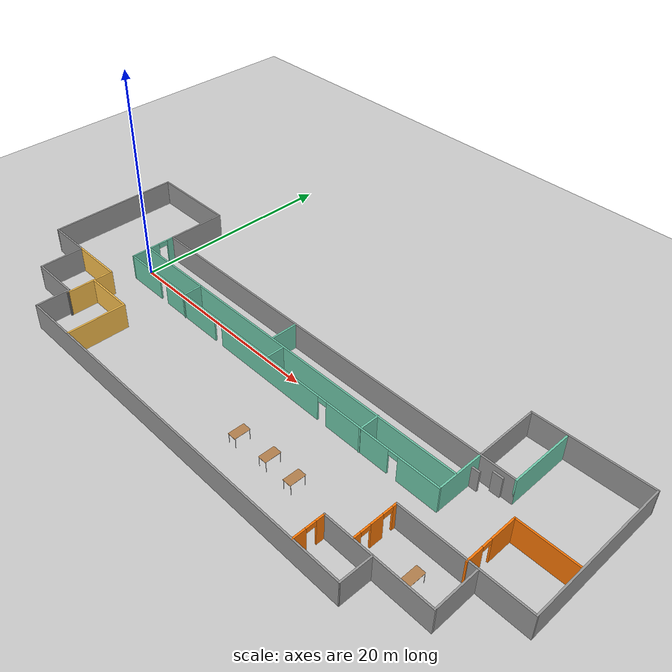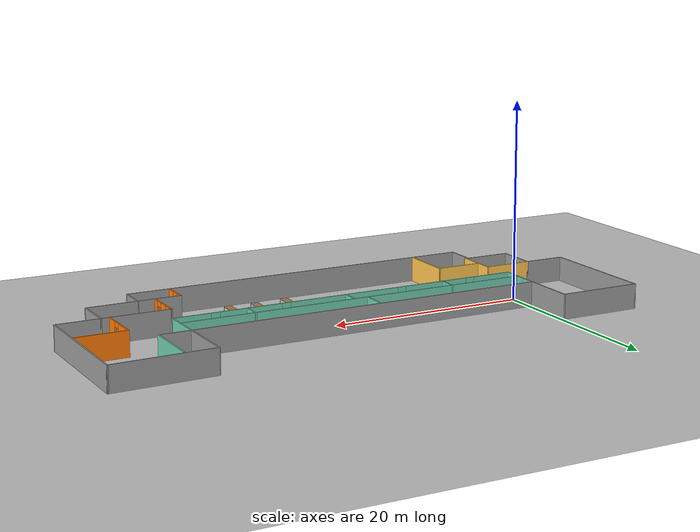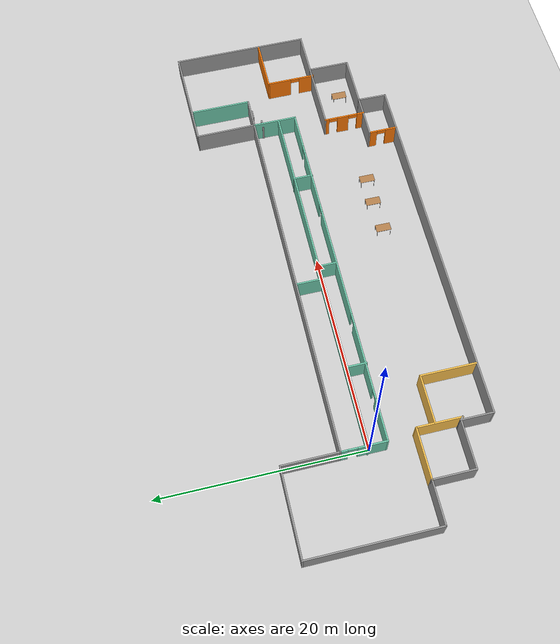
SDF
<sdf version="1.7">
 <world name="default">
  <model name="ground_plane">
   <static>1</static>
   <link name="link">
    <collision name="collision">
     <geometry><plane><normal>0 0 1</normal><size>100 100</size></plane></geometry>
     <surface>
      <contact><collide_bitmask>65535</collide_bitmask></contact>
      <friction><ode><mu>100</mu><mu2>50</mu2></ode></friction>
     </surface>
    </collision>
    <visual name="visual">
     <cast_shadows>0</cast_shadows>
     <geometry><plane><normal>0 0 1</normal><size>100 100</size></plane></geometry>
     <material>
      <script><uri>file://media/materials/scripts/gazebo.material</uri><name>Gazebo/Grey</name></script>
     </material>
    </visual>
   </link>
  </model>
  <model name="Building">
   <pose>18.6806 -1.21003 0 0 -0 0</pose>
   <link name="Door_6">
    <collision name="Door_6_Collision">
     <geometry><box><size>0.9 0.17 2</size></box></geometry>
     <pose>0 0 1 0 -0 0</pose>
    </collision>
    <visual name="Door_6_Visual">
     <pose>0 0 1 0 -0 0</pose>
     <geometry><box><size>0.9 0.17 2</size></box></geometry>
     <material>
      <script><uri>file://media/materials/scripts/gazebo.material</uri><name>Gazebo/Grey</name></script>
     </material>
    </visual>
    <pose>17.5014 3.14748 0 0 -0 0</pose>
   </link>
   <link name="Door_8">
    <collision name="Door_8_Collision">
     <geometry><box><size>0.9 0.17 2</size></box></geometry>
     <pose>0 0 1 0 -0 0</pose>
    </collision>
    <visual name="Door_8_Visual">
     <pose>0 0 1 0 -0 0</pose>
     <geometry><box><size>0.9 0.17 2</size></box></geometry>
     <material>
      <script><uri>file://media/materials/scripts/gazebo.material</uri><name>Gazebo/Grey</name></script>
     </material>
    </visual>
    <pose>18.9298 3.8962 0 0 -0 0</pose>
   </link>
   <link name="Wall_1">
    <collision name="Wall_1_Collision">
     <geometry><box><size>12.75 0.15 2.5</size></box></geometry>
     <pose>0 0 1.25 0 -0 0</pose>
    </collision>
    <visual name="Wall_1_Visual">
     <pose>0 0 1.25 0 -0 0</pose>
     <geometry><box><size>12.75 0.15 2.5</size></box></geometry>
     <material>
      <script><uri>file://media/materials/scripts/gazebo.material</uri><name>Gazebo/Grey</name></script>
      <ambient>1 1 1 1</ambient>
     </material>
     <meta><layer>0</layer></meta>
    </visual>
    <pose>-27.2758 3.22483 0 0 -0 -1.5708</pose>
   </link>
   <link name="Wall_10">
    <collision name="Wall_10_Collision">
     <geometry><box><size>5.61451 0.15 2.5</size></box></geometry>
     <pose>0 0 1.25 0 -0 0</pose>
    </collision>
    <visual name="Wall_10_Visual">
     <pose>0 0 1.25 0 -0 0</pose>
     <geometry><box><size>5.61451 0.15 2.5</size></box></geometry>
     <material>
      <script><uri>file://media/materials/scripts/gazebo.material</uri><name>Gazebo/Grey</name></script>
      <ambient>1 1 1 1</ambient>
     </material>
     <meta><layer>0</layer></meta>
    </visual>
    <pose>-18.9258 6.79266 0 0 -0 -1.5708</pose>
   </link>
   <link name="Wall_11">
    <collision name="Wall_11_Collision">
     <geometry><box><size>36.25 0.15 2.5</size></box></geometry>
     <pose>0 0 1.25 0 -0 0</pose>
    </collision>
    <visual name="Wall_11_Visual">
     <pose>0 0 1.25 0 -0 0</pose>
     <geometry><box><size>36.25 0.15 2.5</size></box></geometry>
     <material>
      <script><uri>file://media/materials/scripts/gazebo.material</uri><name>Gazebo/Grey</name></script>
      <ambient>1 1 1 1</ambient>
     </material>
     <meta><layer>0</layer></meta>
    </visual>
    <pose>-0.875826 4.0605 0 0 -0 0</pose>
   </link>
   <link name="Wall_12">
    <collision name="Wall_12_Collision">
     <geometry><box><size>6.13837 0.15 2.5</size></box></geometry>
     <pose>0 0 1.25 0 -0 0</pose>
    </collision>
    <visual name="Wall_12_Visual">
     <pose>0 0 1.25 0 -0 0</pose>
     <geometry><box><size>6.13837 0.15 2.5</size></box></geometry>
     <material>
      <script><uri>file://media/materials/scripts/gazebo.material</uri><name>Gazebo/Grey</name></script>
      <ambient>1 1 1 1</ambient>
     </material>
     <meta><layer>0</layer></meta>
    </visual>
    <pose>17.1516 7.0546 0 0 -0 1.57835</pose>
   </link>
   <link name="Wall_13">
    <collision name="Wall_13_Collision">
     <geometry><box><size>10.2977 0.15 2.5</size></box></geometry>
     <pose>0 0 1.25 0 -0 0</pose>
    </collision>
    <visual name="Wall_13_Visual">
     <pose>0 0 1.25 0 -0 0</pose>
     <geometry><box><size>10.2977 0.15 2.5</size></box></geometry>
     <material>
      <script><uri>file://media/materials/scripts/gazebo.material</uri><name>Gazebo/Grey</name></script>
      <ambient>1 1 1 1</ambient>
     </material>
     <meta><layer>0</layer></meta>
    </visual>
    <pose>22.2016 10.1618 0 0 -0 0.022285</pose>
   </link>
   <link name="Wall_14">
    <collision name="Wall_14_Collision">
     <geometry><box><size>13.75 0.15 2.5</size></box></geometry>
     <pose>0 0 1.25 0 -0 0</pose>
    </collision>
    <visual name="Wall_14_Visual">
     <pose>0 0 1.25 0 -0 0</pose>
     <geometry><box><size>13.75 0.15 2.5</size></box></geometry>
     <material>
      <script><uri>file://media/materials/scripts/gazebo.material</uri><name>Gazebo/Grey</name></script>
      <ambient>1 1 1 1</ambient>
     </material>
     <meta><layer>0</layer></meta>
    </visual>
    <pose>27.2742 3.47483 0 0 -0 -1.5708</pose>
   </link>
   <link name="Wall_15">
    <collision name="Wall_15_Collision">
     <geometry><box><size>4.5 0.15 2.5</size></box></geometry>
     <pose>0 0 1.25 0 -0 0</pose>
    </collision>
    <visual name="Wall_15_Visual">
     <pose>0 0 1.25 0 -0 0</pose>
     <geometry><box><size>4.5 0.15 2.5</size></box></geometry>
     <material>
      <script><uri>file://media/materials/scripts/gazebo.material</uri><name>Gazebo/Grey</name></script>
      <ambient>1 1 1 1</ambient>
     </material>
     <meta><layer>0</layer></meta>
    </visual>
    <pose>25.0992 -3.32517 0 0 -0 3.14159</pose>
   </link>
   <link name="Wall_16">
    <collision name="Wall_16_Collision">
     <geometry><box><size>4.25 0.15 2.5</size></box></geometry>
     <pose>0 0 1.25 0 -0 0</pose>
    </collision>
    <visual name="Wall_16_Visual">
     <pose>0 0 1.25 0 -0 0</pose>
     <geometry><box><size>4.25 0.15 2.5</size></box></geometry>
     <material>
      <script><uri>file://media/materials/scripts/gazebo.material</uri><name>Gazebo/Grey</name></script>
      <ambient>1 1 1 1</ambient>
     </material>
     <meta><layer>0</layer></meta>
    </visual>
    <pose>22.9242 -5.37517 0 0 -0 -1.5708</pose>
   </link>
   <link name="Wall_2">
    <collision name="Wall_2_Collision">
     <geometry><box><size>4.25 0.15 2.5</size></box></geometry>
     <pose>0 0 1.25 0 -0 0</pose>
    </collision>
    <visual name="Wall_2_Visual">
     <pose>0 0 1.25 0 -0 0</pose>
     <geometry><box><size>4.25 0.15 2.5</size></box></geometry>
     <material>
      <script><uri>file://media/materials/scripts/gazebo.material</uri><name>Gazebo/Grey</name></script>
      <ambient>1 1 1 1</ambient>
     </material>
     <meta><layer>0</layer></meta>
    </visual>
    <pose>-25.2258 -3.07517 0 0 -0 0</pose>
   </link>
   <link name="Wall_20">
    <collision name="Wall_20_Collision">
     <geometry><box><size>5.2502 0.15 2.5</size></box></geometry>
     <pose>0 0 1.25 0 -0 0</pose>
    </collision>
    <visual name="Wall_20_Visual">
     <pose>0 0 1.25 0 -0 0</pose>
     <geometry><box><size>5.2502 0.15 2.5</size></box></geometry>
     <material>
      <script><uri>file://media/materials/scripts/gazebo.material</uri><name>Gazebo/Grey</name></script>
      <ambient>1 1 1 1</ambient>
     </material>
     <meta><layer>0</layer></meta>
    </visual>
    <pose>20.3742 -7.42517 0 0 -0 3.14159</pose>
   </link>
   <link name="Wall_21">
    <collision name="Wall_21_Collision">
     <geometry><box><size>3.00044 0.15 2.5</size></box></geometry>
     <pose>0 0 1.25 0 -0 0</pose>
    </collision>
    <visual name="Wall_21_Visual">
     <pose>0 0 1.25 0 -0 0</pose>
     <geometry><box><size>3.00044 0.15 2.5</size></box></geometry>
     <material>
      <script><uri>file://media/materials/scripts/gazebo.material</uri><name>Gazebo/Grey</name></script>
      <ambient>1 1 1 1</ambient>
     </material>
     <meta><layer>0</layer></meta>
    </visual>
    <pose>17.7992 -8.85017 0 0 -0 -1.58834</pose>
   </link>
   <link name="Wall_3">
    <collision name="Wall_3_Collision">
     <geometry><box><size>4.25 0.15 2.5</size></box></geometry>
     <pose>0 0 1.25 0 -0 0</pose>
    </collision>
    <visual name="Wall_3_Visual">
     <pose>0 0 1.25 0 -0 0</pose>
     <geometry><box><size>4.25 0.15 2.5</size></box></geometry>
     <material>
      <script><uri>file://media/materials/scripts/gazebo.material</uri><name>Gazebo/Grey</name></script>
      <ambient>1 1 1 1</ambient>
     </material>
     <meta><layer>0</layer></meta>
    </visual>
    <pose>-23.1758 -5.12517 0 0 -0 -1.5708</pose>
   </link>
   <link name="Wall_32">
    <collision name="Wall_32_Collision">
     <geometry><box><size>4.5 0.15 2.5</size></box></geometry>
     <pose>0 0 1.25 0 -0 0</pose>
    </collision>
    <visual name="Wall_32_Visual">
     <pose>0 0 1.25 0 -0 0</pose>
     <geometry><box><size>4.5 0.15 2.5</size></box></geometry>
     <material>
      <script><uri>file://media/materials/scripts/gazebo.material</uri><name>Gazebo/Grey</name></script>
      <ambient>0.435294 0.796078 0.67451 1</ambient>
     </material>
     <meta><layer>0</layer></meta>
    </visual>
    <pose>17.1742 1.8855 0 0 -0 -1.5708</pose>
   </link>
   <link name="Wall_33">
    <pose>-0.875826 -0.289499 0 0 -0 3.14159</pose>
    <visual name="Wall_33_Visual_0">
     <pose>-16.2149 0 1.25 0 -0 0</pose>
     <geometry><box><size>3.82029 0.15 2.5</size></box></geometry>
     <material>
      <script><uri>file://media/materials/scripts/gazebo.material</uri><name>Gazebo/Grey</name></script>
      <ambient>0.435294 0.796078 0.67451 1</ambient>
     </material>
     <meta><layer>0</layer></meta>
    </visual>
    <collision name="Wall_33_Collision_0">
     <geometry><box><size>3.82029 0.15 2.5</size></box></geometry>
     <pose>-16.2149 0 1.25 0 -0 0</pose>
    </collision>
    <visual name="Wall_33_Visual_1">
     <pose>-10.2593 0 1.25 0 -0 0</pose>
     <geometry><box><size>6.2908 0.15 2.5</size></box></geometry>
     <material>
      <script><uri>file://media/materials/scripts/gazebo.material</uri><name>Gazebo/Grey</name></script>
      <ambient>0.435294 0.796078 0.67451 1</ambient>
     </material>
     <meta><layer>0</layer></meta>
    </visual>
    <collision name="Wall_33_Collision_1">
     <geometry><box><size>6.2908 0.15 2.5</size></box></geometry>
     <pose>-10.2593 0 1.25 0 -0 0</pose>
    </collision>
    <visual name="Wall_33_Visual_2">
     <pose>-0.445449 0 1.25 0 -0 0</pose>
     <geometry><box><size>11.5369 0.15 2.5</size></box></geometry>
     <material>
      <script><uri>file://media/materials/scripts/gazebo.material</uri><name>Gazebo/Grey</name></script>
      <ambient>0.435294 0.796078 0.67451 1</ambient>
     </material>
     <meta><layer>0</layer></meta>
    </visual>
    <collision name="Wall_33_Collision_2">
     <geometry><box><size>11.5369 0.15 2.5</size></box></geometry>
     <pose>-0.445449 0 1.25 0 -0 0</pose>
    </collision>
    <visual name="Wall_33_Visual_3">
     <pose>9.63976 0 1.25 0 -0 0</pose>
     <geometry><box><size>6.8335 0.15 2.5</size></box></geometry>
     <material>
      <script><uri>file://media/materials/scripts/gazebo.material</uri><name>Gazebo/Grey</name></script>
      <ambient>0.435294 0.796078 0.67451 1</ambient>
     </material>
     <meta><layer>0</layer></meta>
    </visual>
    <collision name="Wall_33_Collision_3">
     <geometry><box><size>6.8335 0.15 2.5</size></box></geometry>
     <pose>9.63976 0 1.25 0 -0 0</pose>
    </collision>
    <visual name="Wall_33_Visual_4">
     <pose>16.0408 0 1.25 0 -0 0</pose>
     <geometry><box><size>4.16848 0.15 2.5</size></box></geometry>
     <material>
      <script><uri>file://media/materials/scripts/gazebo.material</uri><name>Gazebo/Grey</name></script>
      <ambient>0.435294 0.796078 0.67451 1</ambient>
     </material>
     <meta><layer>0</layer></meta>
    </visual>
    <collision name="Wall_33_Collision_4">
     <geometry><box><size>4.16848 0.15 2.5</size></box></geometry>
     <pose>16.0408 0 1.25 0 -0 0</pose>
    </collision>
    <visual name="Wall_33_Visual_5">
     <pose>-13.8547 0 2.25 0 -0 0</pose>
     <geometry><box><size>0.9 0.15 0.5</size></box></geometry>
     <material>
      <script><uri>file://media/materials/scripts/gazebo.material</uri><name>Gazebo/Grey</name></script>
      <ambient>0.435294 0.796078 0.67451 1</ambient>
     </material>
     <meta><layer>0</layer></meta>
    </visual>
    <collision name="Wall_33_Collision_5">
     <geometry><box><size>0.9 0.15 0.5</size></box></geometry>
     <pose>-13.8547 0 2.25 0 -0 0</pose>
    </collision>
    <visual name="Wall_33_Visual_6">
     <pose>-6.66391 0 2.25 0 -0 0</pose>
     <geometry><box><size>0.9 0.15 0.5</size></box></geometry>
     <material>
      <script><uri>file://media/materials/scripts/gazebo.material</uri><name>Gazebo/Grey</name></script>
      <ambient>0.435294 0.796078 0.67451 1</ambient>
     </material>
     <meta><layer>0</layer></meta>
    </visual>
    <collision name="Wall_33_Collision_6">
     <geometry><box><size>0.9 0.15 0.5</size></box></geometry>
     <pose>-6.66391 0 2.25 0 -0 0</pose>
    </collision>
    <visual name="Wall_33_Visual_7">
     <pose>5.77301 0 2.25 0 -0 0</pose>
     <geometry><box><size>0.9 0.15 0.5</size></box></geometry>
     <material>
      <script><uri>file://media/materials/scripts/gazebo.material</uri><name>Gazebo/Grey</name></script>
      <ambient>0.435294 0.796078 0.67451 1</ambient>
     </material>
     <meta><layer>0</layer></meta>
    </visual>
    <collision name="Wall_33_Collision_7">
     <geometry><box><size>0.9 0.15 0.5</size></box></geometry>
     <pose>5.77301 0 2.25 0 -0 0</pose>
    </collision>
    <visual name="Wall_33_Visual_8">
     <pose>13.5065 0 2.25 0 -0 0</pose>
     <geometry><box><size>0.9 0.15 0.5</size></box></geometry>
     <material>
      <script><uri>file://media/materials/scripts/gazebo.material</uri><name>Gazebo/Grey</name></script>
      <ambient>0.435294 0.796078 0.67451 1</ambient>
     </material>
     <meta><layer>0</layer></meta>
    </visual>
    <collision name="Wall_33_Collision_8">
     <geometry><box><size>0.9 0.15 0.5</size></box></geometry>
     <pose>13.5065 0 2.25 0 -0 0</pose>
    </collision>
   </link>
   <link name="Wall_35">
    <pose>-18.9258 1.8855 0 0 -0 -1.5708</pose>
    <visual name="Wall_35_Visual_0">
     <pose>-1.86792 0 1.25 0 -0 0</pose>
     <geometry><box><size>0.764151 0.15 2.5</size></box></geometry>
     <material>
      <script><uri>file://media/materials/scripts/gazebo.material</uri><name>Gazebo/Grey</name></script>
      <ambient>0.435294 0.796078 0.67451 1</ambient>
     </material>
     <meta><layer>0</layer></meta>
    </visual>
    <collision name="Wall_35_Collision_0">
     <geometry><box><size>0.764151 0.15 2.5</size></box></geometry>
     <pose>-1.86792 0 1.25 0 -0 0</pose>
    </collision>
    <visual name="Wall_35_Visual_1">
     <pose>0.832076 0 1.25 0 -0 0</pose>
     <geometry><box><size>2.83585 0.15 2.5</size></box></geometry>
     <material>
      <script><uri>file://media/materials/scripts/gazebo.material</uri><name>Gazebo/Grey</name></script>
      <ambient>0.435294 0.796078 0.67451 1</ambient>
     </material>
     <meta><layer>0</layer></meta>
    </visual>
    <collision name="Wall_35_Collision_1">
     <geometry><box><size>2.83585 0.15 2.5</size></box></geometry>
     <pose>0.832076 0 1.25 0 -0 0</pose>
    </collision>
    <visual name="Wall_35_Visual_2">
     <pose>-1.03585 0 2.25 0 -0 0</pose>
     <geometry><box><size>0.9 0.15 0.5</size></box></geometry>
     <material>
      <script><uri>file://media/materials/scripts/gazebo.material</uri><name>Gazebo/Grey</name></script>
      <ambient>0.435294 0.796078 0.67451 1</ambient>
     </material>
     <meta><layer>0</layer></meta>
    </visual>
    <collision name="Wall_35_Collision_2">
     <geometry><box><size>0.9 0.15 0.5</size></box></geometry>
     <pose>-1.03585 0 2.25 0 -0 0</pose>
    </collision>
   </link>
   <link name="Wall_38">
    <collision name="Wall_38_Collision">
     <geometry><box><size>36.25 0.15 2.5</size></box></geometry>
     <pose>0 0 1.25 0 -0 0</pose>
    </collision>
    <visual name="Wall_38_Visual">
     <pose>0 0 1.25 0 -0 0</pose>
     <geometry><box><size>36.25 0.15 2.5</size></box></geometry>
     <material>
      <script><uri>file://media/materials/scripts/gazebo.material</uri><name>Gazebo/Grey</name></script>
      <ambient>0.435294 0.796078 0.67451 1</ambient>
     </material>
     <meta><layer>0</layer></meta>
    </visual>
    <pose>-0.945311 1.47414 0 0 -0 0</pose>
   </link>
   <link name="Wall_4">
    <collision name="Wall_4_Collision">
     <geometry><box><size>4.75 0.15 2.5</size></box></geometry>
     <pose>0 0 1.25 0 -0 0</pose>
    </collision>
    <visual name="Wall_4_Visual">
     <pose>0 0 1.25 0 -0 0</pose>
     <geometry><box><size>4.75 0.15 2.5</size></box></geometry>
     <material>
      <script><uri>file://media/materials/scripts/gazebo.material</uri><name>Gazebo/Grey</name></script>
      <ambient>1 1 1 1</ambient>
     </material>
     <meta><layer>0</layer></meta>
    </visual>
    <pose>-20.8758 -7.17517 0 0 -0 0</pose>
   </link>
   <link name="Wall_42">
    <collision name="Wall_42_Collision">
     <geometry><box><size>2 0.15 2.5</size></box></geometry>
     <pose>0 0 1.25 0 -0 0</pose>
    </collision>
    <visual name="Wall_42_Visual">
     <pose>0 0 1.25 0 -0 0</pose>
     <geometry><box><size>2 0.15 2.5</size></box></geometry>
     <material>
      <script><uri>file://media/materials/scripts/gazebo.material</uri><name>Gazebo/Grey</name></script>
      <ambient>0.435294 0.796078 0.67451 1</ambient>
     </material>
     <meta><layer>0</layer></meta>
    </visual>
    <pose>-11.307 0.549144 0 0 -0 -1.5708</pose>
   </link>
   <link name="Wall_44">
    <collision name="Wall_44_Collision">
     <geometry><box><size>1.75 0.15 2.5</size></box></geometry>
     <pose>0 0 1.25 0 -0 0</pose>
    </collision>
    <visual name="Wall_44_Visual">
     <pose>0 0 1.25 0 -0 0</pose>
     <geometry><box><size>1.75 0.15 2.5</size></box></geometry>
     <material>
      <script><uri>file://media/materials/scripts/gazebo.material</uri><name>Gazebo/Grey</name></script>
      <ambient>0.435294 0.796078 0.67451 1</ambient>
     </material>
     <meta><layer>0</layer></meta>
    </visual>
    <pose>-0.54344 0.628919 0 0 -0 -1.5708</pose>
   </link>
   <link name="Wall_46">
    <collision name="Wall_46_Collision">
     <geometry><box><size>2 0.15 2.5</size></box></geometry>
     <pose>0 0 1.25 0 -0 0</pose>
    </collision>
    <visual name="Wall_46_Visual">
     <pose>0 0 1.25 0 -0 0</pose>
     <geometry><box><size>2 0.15 2.5</size></box></geometry>
     <material>
      <script><uri>file://media/materials/scripts/gazebo.material</uri><name>Gazebo/Grey</name></script>
      <ambient>0.435294 0.796078 0.67451 1</ambient>
     </material>
     <meta><layer>0</layer></meta>
    </visual>
    <pose>9.7679 0.59437 0 0 -0 -1.5708</pose>
   </link>
   <link name="Wall_5">
    <collision name="Wall_5_Collision">
     <geometry><box><size>3.25 0.15 2.5</size></box></geometry>
     <pose>0 0 1.25 0 -0 0</pose>
    </collision>
    <visual name="Wall_5_Visual">
     <pose>0 0 1.25 0 -0 0</pose>
     <geometry><box><size>3.25 0.15 2.5</size></box></geometry>
     <material>
      <script><uri>file://media/materials/scripts/gazebo.material</uri><name>Gazebo/Grey</name></script>
      <ambient>1 1 1 1</ambient>
     </material>
     <meta><layer>0</layer></meta>
    </visual>
    <pose>-18.5758 -8.72517 0 0 -0 -1.5708</pose>
   </link>
   <link name="Wall_51">
    <collision name="Wall_51_Collision">
     <geometry><box><size>2.5 0.15 2.5</size></box></geometry>
     <pose>0 0 1.25 0 -0 0</pose>
    </collision>
    <visual name="Wall_51_Visual">
     <pose>0 0 1.25 0 -0 0</pose>
     <geometry><box><size>2.5 0.15 2.5</size></box></geometry>
     <material>
      <script><uri>file://media/materials/scripts/gazebo.material</uri><name>Gazebo/Grey</name></script>
      <ambient>0.435294 0.796078 0.67451 1</ambient>
     </material>
     <meta><layer>0</layer></meta>
    </visual>
    <pose>-1.94542 2.7396 0 0 -0 1.5708</pose>
   </link>
   <link name="Wall_55">
    <collision name="Wall_55_Collision">
     <geometry><box><size>3.25 0.15 2.5</size></box></geometry>
     <pose>0 0 1.25 0 -0 0</pose>
    </collision>
    <visual name="Wall_55_Visual">
     <pose>0 0 1.25 0 -0 0</pose>
     <geometry><box><size>3.25 0.15 2.5</size></box></geometry>
     <material>
      <script><uri>file://media/materials/scripts/gazebo.material</uri><name>Gazebo/Grey</name></script>
      <ambient>1 1 1 1</ambient>
     </material>
     <meta><layer>0</layer></meta>
    </visual>
    <pose>18.7242 4.0605 0 0 -0 0</pose>
   </link>
   <link name="Wall_56">
    <collision name="Wall_56_Collision">
     <geometry><box><size>6 0.15 2.5</size></box></geometry>
     <pose>0 0 1.25 0 -0 0</pose>
    </collision>
    <visual name="Wall_56_Visual">
     <pose>0 0 1.25 0 -0 0</pose>
     <geometry><box><size>6 0.15 2.5</size></box></geometry>
     <material>
      <script><uri>file://media/materials/scripts/gazebo.material</uri><name>Gazebo/Grey</name></script>
      <ambient>0.435294 0.796078 0.67451 1</ambient>
     </material>
     <meta><layer>0</layer></meta>
    </visual>
    <pose>20.2742 6.9855 0 0 -0 1.5708</pose>
   </link>
   <link name="Wall_59">
    <collision name="Wall_59_Collision">
     <geometry><box><size>5 0.15 2.5</size></box></geometry>
     <pose>0 0 1.25 0 -0 0</pose>
    </collision>
    <visual name="Wall_59_Visual">
     <pose>0 0 1.25 0 -0 0</pose>
     <geometry><box><size>5 0.15 2.5</size></box></geometry>
     <material>
      <script><uri>file://media/materials/scripts/gazebo.material</uri><name>Gazebo/Grey</name></script>
      <ambient>1 0.764706 0.305882 1</ambient>
     </material>
     <meta><layer>0</layer></meta>
    </visual>
    <pose>-20.7508 -3.07517 0 0 -0 0</pose>
   </link>
   <link name="Wall_6">
    <collision name="Wall_6_Collision">
     <geometry><box><size>36.5 0.15 2.5</size></box></geometry>
     <pose>0 0 1.25 0 -0 0</pose>
    </collision>
    <visual name="Wall_6_Visual">
     <pose>0 0 1.25 0 -0 0</pose>
     <geometry><box><size>36.5 0.15 2.5</size></box></geometry>
     <material>
      <script><uri>file://media/materials/scripts/gazebo.material</uri><name>Gazebo/Grey</name></script>
      <ambient>1 1 1 1</ambient>
     </material>
     <meta><layer>0</layer></meta>
    </visual>
    <pose>-0.400826 -10.2752 0 0 -0 0</pose>
   </link>
   <link name="Wall_60">
    <collision name="Wall_60_Collision">
     <geometry><box><size>4.5 0.15 2.5</size></box></geometry>
     <pose>0 0 1.25 0 -0 0</pose>
    </collision>
    <visual name="Wall_60_Visual">
     <pose>0 0 1.25 0 -0 0</pose>
     <geometry><box><size>4.5 0.15 2.5</size></box></geometry>
     <material>
      <script><uri>file://media/materials/scripts/gazebo.material</uri><name>Gazebo/Grey</name></script>
      <ambient>1 0.764706 0.305882 1</ambient>
     </material>
     <meta><layer>0</layer></meta>
    </visual>
    <pose>-18.3258 -5.25017 0 0 -0 -1.5708</pose>
   </link>
   <link name="Wall_62">
    <collision name="Wall_62_Collision">
     <geometry><box><size>4.75 0.15 2.5</size></box></geometry>
     <pose>0 0 1.25 0 -0 0</pose>
    </collision>
    <visual name="Wall_62_Visual">
     <pose>0 0 1.25 0 -0 0</pose>
     <geometry><box><size>4.75 0.15 2.5</size></box></geometry>
     <material>
      <script><uri>file://media/materials/scripts/gazebo.material</uri><name>Gazebo/Grey</name></script>
      <ambient>1 0.764706 0.305882 1</ambient>
     </material>
     <meta><layer>0</layer></meta>
    </visual>
    <pose>-15.9722 -4.8361 0 0 -0 0</pose>
   </link>
   <link name="Wall_63">
    <collision name="Wall_63_Collision">
     <geometry><box><size>5.5 0.15 2.5</size></box></geometry>
     <pose>0 0 1.25 0 -0 0</pose>
    </collision>
    <visual name="Wall_63_Visual">
     <pose>0 0 1.25 0 -0 0</pose>
     <geometry><box><size>5.5 0.15 2.5</size></box></geometry>
     <material>
      <script><uri>file://media/materials/scripts/gazebo.material</uri><name>Gazebo/Grey</name></script>
      <ambient>1 0.764706 0.305882 1</ambient>
     </material>
     <meta><layer>0</layer></meta>
    </visual>
    <pose>-13.6722 -7.5111 0 0 -0 -1.5708</pose>
   </link>
   <link name="Wall_65">
    <collision name="Wall_65_Collision">
     <geometry><box><size>0.15 0.15 2.5</size></box></geometry>
     <pose>0 0 1.25 0 -0 0</pose>
    </collision>
    <visual name="Wall_65_Visual">
     <pose>0 0 1.25 0 -0 0</pose>
     <geometry><box><size>0.15 0.15 2.5</size></box></geometry>
     <material>
      <script><uri>file://media/materials/scripts/gazebo.material</uri><name>Gazebo/Grey</name></script>
      <ambient>1 1 1 1</ambient>
     </material>
     <meta><layer>0</layer></meta>
    </visual>
    <pose>-18.3258 -7.42517 0 0 -0 0</pose>
   </link>
   <link name="Wall_67">
    <collision name="Wall_67_Collision">
     <geometry><box><size>0.503553 0.15 2.5</size></box></geometry>
     <pose>0 0 1.25 0 -0 0</pose>
    </collision>
    <visual name="Wall_67_Visual">
     <pose>0 0 1.25 0 -0 0</pose>
     <geometry><box><size>0.503553 0.15 2.5</size></box></geometry>
     <material>
      <script><uri>file://media/materials/scripts/gazebo.material</uri><name>Gazebo/Grey</name></script>
      <ambient>1 1 1 1</ambient>
     </material>
     <meta><layer>0</layer></meta>
    </visual>
    <pose>-18.4508 -7.30017 0 0 -0 2.35619</pose>
   </link>
   <link name="Wall_69">
    <collision name="Wall_69_Collision">
     <geometry><box><size>5.25 0.15 2.5</size></box></geometry>
     <pose>0 0 1.25 0 -0 0</pose>
    </collision>
    <visual name="Wall_69_Visual">
     <pose>0 0 1.25 0 -0 0</pose>
     <geometry><box><size>5.25 0.15 2.5</size></box></geometry>
     <material>
      <script><uri>file://media/materials/scripts/gazebo.material</uri><name>Gazebo/Grey</name></script>
      <ambient>0.996078 0.47451 0.0196078 1</ambient>
     </material>
     <meta><layer>0</layer></meta>
    </visual>
    <pose>24.63 1.42961 0 0 -0 3.14159</pose>
   </link>
   <link name="Wall_70">
    <pose>22.08 -0.995387 0 0 -0 -1.5708</pose>
    <visual name="Wall_70_Visual_0">
     <pose>-1.25768 0 1.25 0 -0 0</pose>
     <geometry><box><size>2.48464 0.15 2.5</size></box></geometry>
     <material>
      <script><uri>file://media/materials/scripts/gazebo.material</uri><name>Gazebo/Grey</name></script>
      <ambient>0.996078 0.47451 0.0196078 1</ambient>
     </material>
     <meta><layer>0</layer></meta>
    </visual>
    <collision name="Wall_70_Collision_0">
     <geometry><box><size>2.48464 0.15 2.5</size></box></geometry>
     <pose>-1.25768 0 1.25 0 -0 0</pose>
    </collision>
    <visual name="Wall_70_Visual_1">
     <pose>1.69232 0 1.25 0 -0 0</pose>
     <geometry><box><size>1.61536 0.15 2.5</size></box></geometry>
     <material>
      <script><uri>file://media/materials/scripts/gazebo.material</uri><name>Gazebo/Grey</name></script>
      <ambient>0.996078 0.47451 0.0196078 1</ambient>
     </material>
     <meta><layer>0</layer></meta>
    </visual>
    <collision name="Wall_70_Collision_1">
     <geometry><box><size>1.61536 0.15 2.5</size></box></geometry>
     <pose>1.69232 0 1.25 0 -0 0</pose>
    </collision>
    <visual name="Wall_70_Visual_2">
     <pose>0.434642 0 2.25 0 -0 0</pose>
     <geometry><box><size>0.9 0.15 0.5</size></box></geometry>
     <material>
      <script><uri>file://media/materials/scripts/gazebo.material</uri><name>Gazebo/Grey</name></script>
      <ambient>0.996078 0.47451 0.0196078 1</ambient>
     </material>
     <meta><layer>0</layer></meta>
    </visual>
    <collision name="Wall_70_Collision_2">
     <geometry><box><size>0.9 0.15 0.5</size></box></geometry>
     <pose>0.434642 0 2.25 0 -0 0</pose>
    </collision>
   </link>
   <link name="Wall_72">
    <collision name="Wall_72_Collision">
     <geometry><box><size>7 0.15 2.5</size></box></geometry>
     <pose>0 0 1.25 0 -0 0</pose>
    </collision>
    <visual name="Wall_72_Visual">
     <pose>0 0 1.25 0 -0 0</pose>
     <geometry><box><size>7 0.15 2.5</size></box></geometry>
     <material>
      <script><uri>file://media/materials/scripts/gazebo.material</uri><name>Gazebo/Grey</name></script>
      <ambient>1 1 1 1</ambient>
     </material>
     <meta><layer>0</layer></meta>
    </visual>
    <pose>19.4992 -3.32517 0 0 -0 3.14159</pose>
   </link>
   <link name="Wall_74">
    <collision name="Wall_74_Collision">
     <geometry><box><size>4.5 0.15 2.5</size></box></geometry>
     <pose>0 0 1.25 0 -0 0</pose>
    </collision>
    <visual name="Wall_74_Visual">
     <pose>0 0 1.25 0 -0 0</pose>
     <geometry><box><size>4.5 0.15 2.5</size></box></geometry>
     <material>
      <script><uri>file://media/materials/scripts/gazebo.material</uri><name>Gazebo/Grey</name></script>
      <ambient>1 1 1 1</ambient>
     </material>
     <meta><layer>0</layer></meta>
    </visual>
    <pose>15.6492 -7.42517 0 0 -0 3.14159</pose>
   </link>
   <link name="Wall_75">
    <pose>13.4742 -8.85017 0 0 -0 -1.5708</pose>
    <visual name="Wall_75_Visual_0">
     <pose>-1.06655 0 1.25 0 -0 0</pose>
     <geometry><box><size>0.866898 0.15 2.5</size></box></geometry>
     <material>
      <script><uri>file://media/materials/scripts/gazebo.material</uri><name>Gazebo/Grey</name></script>
      <ambient>0.996078 0.47451 0.0196078 1</ambient>
     </material>
     <meta><layer>0</layer></meta>
    </visual>
    <collision name="Wall_75_Collision_0">
     <geometry><box><size>0.866898 0.15 2.5</size></box></geometry>
     <pose>-1.06655 0 1.25 0 -0 0</pose>
    </collision>
    <visual name="Wall_75_Visual_1">
     <pose>0.883449 0 1.25 0 -0 0</pose>
     <geometry><box><size>1.2331 0.15 2.5</size></box></geometry>
     <material>
      <script><uri>file://media/materials/scripts/gazebo.material</uri><name>Gazebo/Grey</name></script>
      <ambient>0.996078 0.47451 0.0196078 1</ambient>
     </material>
     <meta><layer>0</layer></meta>
    </visual>
    <collision name="Wall_75_Collision_1">
     <geometry><box><size>1.2331 0.15 2.5</size></box></geometry>
     <pose>0.883449 0 1.25 0 -0 0</pose>
    </collision>
    <visual name="Wall_75_Visual_2">
     <pose>-0.183102 0 2.25 0 -0 0</pose>
     <geometry><box><size>0.9 0.15 0.5</size></box></geometry>
     <material>
      <script><uri>file://media/materials/scripts/gazebo.material</uri><name>Gazebo/Grey</name></script>
      <ambient>0.996078 0.47451 0.0196078 1</ambient>
     </material>
     <meta><layer>0</layer></meta>
    </visual>
    <collision name="Wall_75_Collision_2">
     <geometry><box><size>0.9 0.15 0.5</size></box></geometry>
     <pose>-0.183102 0 2.25 0 -0 0</pose>
    </collision>
   </link>
   <link name="Wall_77">
    <pose>16.0742 -5.37517 0 0 -0 -1.5708</pose>
    <visual name="Wall_77_Visual_0">
     <pose>-1.88444 0 1.25 0 -0 0</pose>
     <geometry><box><size>0.481127 0.15 2.5</size></box></geometry>
     <material>
      <script><uri>file://media/materials/scripts/gazebo.material</uri><name>Gazebo/Grey</name></script>
      <ambient>0.996078 0.47451 0.0196078 1</ambient>
     </material>
     <meta><layer>0</layer></meta>
    </visual>
    <collision name="Wall_77_Collision_0">
     <geometry><box><size>0.481127 0.15 2.5</size></box></geometry>
     <pose>-1.88444 0 1.25 0 -0 0</pose>
    </collision>
    <visual name="Wall_77_Visual_1">
     <pose>-0.147193 0 1.25 0 -0 0</pose>
     <geometry><box><size>1.19336 0.15 2.5</size></box></geometry>
     <material>
      <script><uri>file://media/materials/scripts/gazebo.material</uri><name>Gazebo/Grey</name></script>
      <ambient>0.996078 0.47451 0.0196078 1</ambient>
     </material>
     <meta><layer>0</layer></meta>
    </visual>
    <collision name="Wall_77_Collision_1">
     <geometry><box><size>1.19336 0.15 2.5</size></box></geometry>
     <pose>-0.147193 0 1.25 0 -0 0</pose>
    </collision>
    <visual name="Wall_77_Visual_2">
     <pose>1.73724 0 1.25 0 -0 0</pose>
     <geometry><box><size>0.775513 0.15 2.5</size></box></geometry>
     <material>
      <script><uri>file://media/materials/scripts/gazebo.material</uri><name>Gazebo/Grey</name></script>
      <ambient>0.996078 0.47451 0.0196078 1</ambient>
     </material>
     <meta><layer>0</layer></meta>
    </visual>
    <collision name="Wall_77_Collision_2">
     <geometry><box><size>0.775513 0.15 2.5</size></box></geometry>
     <pose>1.73724 0 1.25 0 -0 0</pose>
    </collision>
    <visual name="Wall_77_Visual_3">
     <pose>-1.19387 0 2.25 0 -0 0</pose>
     <geometry><box><size>0.9 0.15 0.5</size></box></geometry>
     <material>
      <script><uri>file://media/materials/scripts/gazebo.material</uri><name>Gazebo/Grey</name></script>
      <ambient>0.996078 0.47451 0.0196078 1</ambient>
     </material>
     <meta><layer>0</layer></meta>
    </visual>
    <collision name="Wall_77_Collision_3">
     <geometry><box><size>0.9 0.15 0.5</size></box></geometry>
     <pose>-1.19387 0 2.25 0 -0 0</pose>
    </collision>
    <visual name="Wall_77_Visual_4">
     <pose>0.899487 0 2.25 0 -0 0</pose>
     <geometry><box><size>0.9 0.15 0.5</size></box></geometry>
     <material>
      <script><uri>file://media/materials/scripts/gazebo.material</uri><name>Gazebo/Grey</name></script>
      <ambient>0.996078 0.47451 0.0196078 1</ambient>
     </material>
     <meta><layer>0</layer></meta>
    </visual>
    <collision name="Wall_77_Collision_4">
     <geometry><box><size>0.9 0.15 0.5</size></box></geometry>
     <pose>0.899487 0 2.25 0 -0 0</pose>
    </collision>
   </link>
   <link name="Wall_9">
    <collision name="Wall_9_Collision">
     <geometry><box><size>8.5 0.15 2.5</size></box></geometry>
     <pose>0 0 1.25 0 -0 0</pose>
    </collision>
    <visual name="Wall_9_Visual">
     <pose>0 0 1.25 0 -0 0</pose>
     <geometry><box><size>8.5 0.15 2.5</size></box></geometry>
     <material>
      <script><uri>file://media/materials/scripts/gazebo.material</uri><name>Gazebo/Grey</name></script>
      <ambient>1 1 1 1</ambient>
     </material>
     <meta><layer>0</layer></meta>
    </visual>
    <pose>-23.1008 9.52483 0 0 -0 0</pose>
   </link>
   <static>1</static>
  </model>
  <model name="table_clone_2">
   <static>1</static>
   <link name="link">
    <collision name="surface">
     <pose>0 0 1 0 -0 0</pose>
     <geometry><box><size>1.5 0.8 0.03</size></box></geometry>
     <surface><friction><ode><mu>0.6</mu><mu2>0.6</mu2></ode></friction></surface>
    </collision>
    <visual name="visual1">
     <pose>0 0 1 0 -0 0</pose>
     <geometry><box><size>1.5 0.8 0.03</size></box></geometry>
     <material>
      <script><uri>file://media/materials/scripts/gazebo.material</uri><name>Gazebo/Wood</name></script>
     </material>
    </visual>
    <collision name="front_left_leg">
     <pose>0.68 0.38 0.5 0 -0 0</pose>
     <geometry><cylinder><radius>0.02</radius><length>1</length></cylinder></geometry>
    </collision>
    <visual name="front_left_leg">
     <pose>0.68 0.38 0.5 0 -0 0</pose>
     <geometry><cylinder><radius>0.02</radius><length>1</length></cylinder></geometry>
     <material>
      <script><uri>file://media/materials/scripts/gazebo.material</uri><name>Gazebo/Grey</name></script>
     </material>
    </visual>
    <collision name="front_right_leg">
     <pose>0.68 -0.38 0.5 0 -0 0</pose>
     <geometry><cylinder><radius>0.02</radius><length>1</length></cylinder></geometry>
    </collision>
    <visual name="front_right_leg">
     <pose>0.68 -0.38 0.5 0 -0 0</pose>
     <geometry><cylinder><radius>0.02</radius><length>1</length></cylinder></geometry>
     <material>
      <script><uri>file://media/materials/scripts/gazebo.material</uri><name>Gazebo/Grey</name></script>
     </material>
    </visual>
    <collision name="back_right_leg">
     <pose>-0.68 -0.38 0.5 0 -0 0</pose>
     <geometry><cylinder><radius>0.02</radius><length>1</length></cylinder></geometry>
    </collision>
    <visual name="back_right_leg">
     <pose>-0.68 -0.38 0.5 0 -0 0</pose>
     <geometry><cylinder><radius>0.02</radius><length>1</length></cylinder></geometry>
     <material>
      <script><uri>file://media/materials/scripts/gazebo.material</uri><name>Gazebo/Grey</name></script>
     </material>
    </visual>
    <collision name="back_left_leg">
     <pose>-0.68 0.38 0.5 0 -0 0</pose>
     <geometry><cylinder><radius>0.02</radius><length>1</length></cylinder></geometry>
    </collision>
    <visual name="back_left_leg">
     <pose>-0.68 0.38 0.5 0 -0 0</pose>
     <geometry><cylinder><radius>0.02</radius><length>1</length></cylinder></geometry>
     <material>
      <script><uri>file://media/materials/scripts/gazebo.material</uri><name>Gazebo/Grey</name></script>
     </material>
    </visual>
   </link>
   <pose>21.6532 -7.26938 0 -2.1e-05 0.002967 1.56384</pose>
  </model>
  <model name="table_clone_3">
   <static>1</static>
   <link name="link">
    <collision name="surface">
     <pose>0 0 1 0 -0 0</pose>
     <geometry><box><size>1.5 0.8 0.03</size></box></geometry>
     <surface><friction><ode><mu>0.6</mu><mu2>0.6</mu2></ode></friction></surface>
    </collision>
    <visual name="visual1">
     <pose>0 0 1 0 -0 0</pose>
     <geometry><box><size>1.5 0.8 0.03</size></box></geometry>
     <material>
      <script><uri>file://media/materials/scripts/gazebo.material</uri><name>Gazebo/Wood</name></script>
     </material>
    </visual>
    <collision name="front_left_leg">
     <pose>0.68 0.38 0.5 0 -0 0</pose>
     <geometry><cylinder><radius>0.02</radius><length>1</length></cylinder></geometry>
    </collision>
    <visual name="front_left_leg">
     <pose>0.68 0.38 0.5 0 -0 0</pose>
     <geometry><cylinder><radius>0.02</radius><length>1</length></cylinder></geometry>
     <material>
      <script><uri>file://media/materials/scripts/gazebo.material</uri><name>Gazebo/Grey</name></script>
     </material>
    </visual>
    <collision name="front_right_leg">
     <pose>0.68 -0.38 0.5 0 -0 0</pose>
     <geometry><cylinder><radius>0.02</radius><length>1</length></cylinder></geometry>
    </collision>
    <visual name="front_right_leg">
     <pose>0.68 -0.38 0.5 0 -0 0</pose>
     <geometry><cylinder><radius>0.02</radius><length>1</length></cylinder></geometry>
     <material>
      <script><uri>file://media/materials/scripts/gazebo.material</uri><name>Gazebo/Grey</name></script>
     </material>
    </visual>
    <collision name="back_right_leg">
     <pose>-0.68 -0.38 0.5 0 -0 0</pose>
     <geometry><cylinder><radius>0.02</radius><length>1</length></cylinder></geometry>
    </collision>
    <visual name="back_right_leg">
     <pose>-0.68 -0.38 0.5 0 -0 0</pose>
     <geometry><cylinder><radius>0.02</radius><length>1</length></cylinder></geometry>
     <material>
      <script><uri>file://media/materials/scripts/gazebo.material</uri><name>Gazebo/Grey</name></script>
     </material>
    </visual>
    <collision name="back_left_leg">
     <pose>-0.68 0.38 0.5 0 -0 0</pose>
     <geometry><cylinder><radius>0.02</radius><length>1</length></cylinder></geometry>
    </collision>
    <visual name="back_left_leg">
     <pose>-0.68 0.38 0.5 0 -0 0</pose>
     <geometry><cylinder><radius>0.02</radius><length>1</length></cylinder></geometry>
     <material>
      <script><uri>file://media/materials/scripts/gazebo.material</uri><name>Gazebo/Grey</name></script>
     </material>
    </visual>
   </link>
   <pose>24.8744 -7.09173 0 -2.1e-05 0.002967 1.56384</pose>
  </model>
  <model name="table_clone_4">
   <static>1</static>
   <link name="link">
    <collision name="surface">
     <pose>0 0 1 0 -0 0</pose>
     <geometry><box><size>1.5 0.8 0.03</size></box></geometry>
     <surface><friction><ode><mu>0.6</mu><mu2>0.6</mu2></ode></friction></surface>
    </collision>
    <visual name="visual1">
     <pose>0 0 1 0 -0 0</pose>
     <geometry><box><size>1.5 0.8 0.03</size></box></geometry>
     <material>
      <script><uri>file://media/materials/scripts/gazebo.material</uri><name>Gazebo/Wood</name></script>
     </material>
    </visual>
    <collision name="front_left_leg">
     <pose>0.68 0.38 0.5 0 -0 0</pose>
     <geometry><cylinder><radius>0.02</radius><length>1</length></cylinder></geometry>
    </collision>
    <visual name="front_left_leg">
     <pose>0.68 0.38 0.5 0 -0 0</pose>
     <geometry><cylinder><radius>0.02</radius><length>1</length></cylinder></geometry>
     <material>
      <script><uri>file://media/materials/scripts/gazebo.material</uri><name>Gazebo/Grey</name></script>
     </material>
    </visual>
    <collision name="front_right_leg">
     <pose>0.68 -0.38 0.5 0 -0 0</pose>
     <geometry><cylinder><radius>0.02</radius><length>1</length></cylinder></geometry>
    </collision>
    <visual name="front_right_leg">
     <pose>0.68 -0.38 0.5 0 -0 0</pose>
     <geometry><cylinder><radius>0.02</radius><length>1</length></cylinder></geometry>
     <material>
      <script><uri>file://media/materials/scripts/gazebo.material</uri><name>Gazebo/Grey</name></script>
     </material>
    </visual>
    <collision name="back_right_leg">
     <pose>-0.68 -0.38 0.5 0 -0 0</pose>
     <geometry><cylinder><radius>0.02</radius><length>1</length></cylinder></geometry>
    </collision>
    <visual name="back_right_leg">
     <pose>-0.68 -0.38 0.5 0 -0 0</pose>
     <geometry><cylinder><radius>0.02</radius><length>1</length></cylinder></geometry>
     <material>
      <script><uri>file://media/materials/scripts/gazebo.material</uri><name>Gazebo/Grey</name></script>
     </material>
    </visual>
    <collision name="back_left_leg">
     <pose>-0.68 0.38 0.5 0 -0 0</pose>
     <geometry><cylinder><radius>0.02</radius><length>1</length></cylinder></geometry>
    </collision>
    <visual name="back_left_leg">
     <pose>-0.68 0.38 0.5 0 -0 0</pose>
     <geometry><cylinder><radius>0.02</radius><length>1</length></cylinder></geometry>
     <material>
      <script><uri>file://media/materials/scripts/gazebo.material</uri><name>Gazebo/Grey</name></script>
     </material>
    </visual>
   </link>
   <pose>27.6357 -7.20288 0 -2.1e-05 0.002967 1.56384</pose>
  </model>
  <model name="table_clone_5">
   <static>1</static>
   <link name="link">
    <collision name="surface">
     <pose>0 0 1 0 -0 0</pose>
     <geometry><box><size>1.5 0.8 0.03</size></box></geometry>
     <surface><friction><ode><mu>0.6</mu><mu2>0.6</mu2></ode></friction></surface>
    </collision>
    <visual name="visual1">
     <pose>0 0 1 0 -0 0</pose>
     <geometry><box><size>1.5 0.8 0.03</size></box></geometry>
     <material>
      <script><uri>file://media/materials/scripts/gazebo.material</uri><name>Gazebo/Wood</name></script>
     </material>
    </visual>
    <collision name="front_left_leg">
     <pose>0.68 0.38 0.5 0 -0 0</pose>
     <geometry><cylinder><radius>0.02</radius><length>1</length></cylinder></geometry>
    </collision>
    <visual name="front_left_leg">
     <pose>0.68 0.38 0.5 0 -0 0</pose>
     <geometry><cylinder><radius>0.02</radius><length>1</length></cylinder></geometry>
     <material>
      <script><uri>file://media/materials/scripts/gazebo.material</uri><name>Gazebo/Grey</name></script>
     </material>
    </visual>
    <collision name="front_right_leg">
     <pose>0.68 -0.38 0.5 0 -0 0</pose>
     <geometry><cylinder><radius>0.02</radius><length>1</length></cylinder></geometry>
    </collision>
    <visual name="front_right_leg">
     <pose>0.68 -0.38 0.5 0 -0 0</pose>
     <geometry><cylinder><radius>0.02</radius><length>1</length></cylinder></geometry>
     <material>
      <script><uri>file://media/materials/scripts/gazebo.material</uri><name>Gazebo/Grey</name></script>
     </material>
    </visual>
    <collision name="back_right_leg">
     <pose>-0.68 -0.38 0.5 0 -0 0</pose>
     <geometry><cylinder><radius>0.02</radius><length>1</length></cylinder></geometry>
    </collision>
    <visual name="back_right_leg">
     <pose>-0.68 -0.38 0.5 0 -0 0</pose>
     <geometry><cylinder><radius>0.02</radius><length>1</length></cylinder></geometry>
     <material>
      <script><uri>file://media/materials/scripts/gazebo.material</uri><name>Gazebo/Grey</name></script>
     </material>
    </visual>
    <collision name="back_left_leg">
     <pose>-0.68 0.38 0.5 0 -0 0</pose>
     <geometry><cylinder><radius>0.02</radius><length>1</length></cylinder></geometry>
    </collision>
    <visual name="back_left_leg">
     <pose>-0.68 0.38 0.5 0 -0 0</pose>
     <geometry><cylinder><radius>0.02</radius><length>1</length></cylinder></geometry>
     <material>
      <script><uri>file://media/materials/scripts/gazebo.material</uri><name>Gazebo/Grey</name></script>
     </material>
    </visual>
   </link>
   <pose>38.6069 -7.03401 0 -2.1e-05 0.002967 1.56384</pose>
  </model>
 </world>
</sdf>
